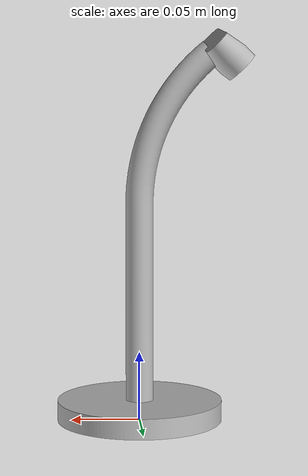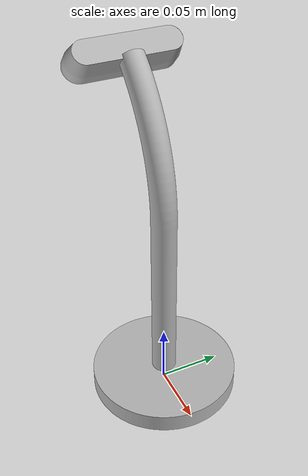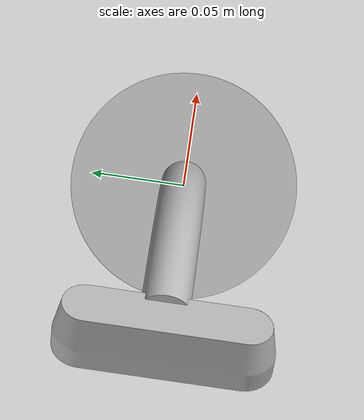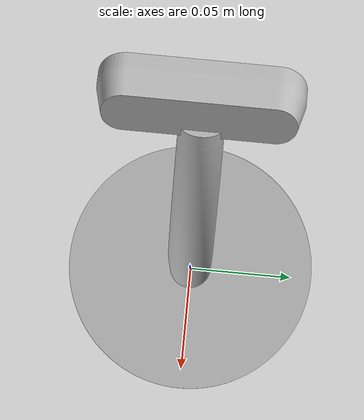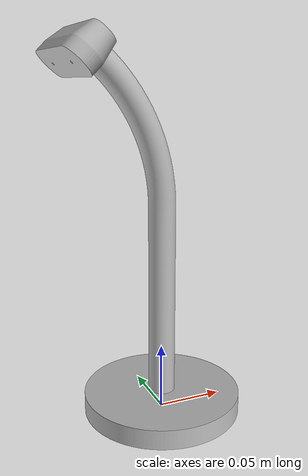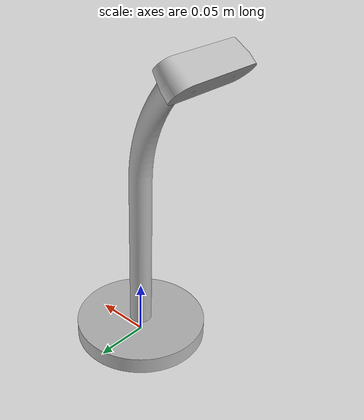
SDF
<?xml version='1.0'?>
<sdf version='1.7'>
  <model name="VisionKit">
    <pose>0 0 0 0 0 0 0</pose>
    <link name="stand">
      <visual name="stand_visual">
        <pose>0 0 0 0 0 0 0</pose>
        <geometry>
          <mesh>
            <uri>model://VisionKit/stand.stl</uri>
            <scale>0.001 0.001 0.001</scale>
          </mesh>
        </geometry>
      </visual>
      <collision name="stand_collision">
        <pose>0 0 0 0 0 0 0</pose>
        <geometry>
          <mesh>
            <uri>model://VisionKit/stand.stl</uri>
            <scale>0.001 0.001 0.001</scale>
          </mesh>
        </geometry>
      </collision>
    </link>
    <link name="camera">
      <visual name="camera_visual">
        <pose>-0.056011 0.016227 0.274459 0 -0.785397 0</pose>
        <geometry>
          <mesh>
            <uri>model://RealSenseD415/camera.stl</uri>
            <scale>0.001 0.001 0.001</scale>
          </mesh>
        </geometry>
      </visual>
      <collision name="camera_collision">
        <pose>0 0 0 0 0 0 0</pose>
        <geometry>
          <mesh>
            <uri>model://RealSenseD415/camera.stl</uri>
            <scale>0.001 0.001 0.001</scale>
          </mesh>
        </geometry>
      </collision>
    </link>
    <static>1</static>
  </model>
</sdf>
